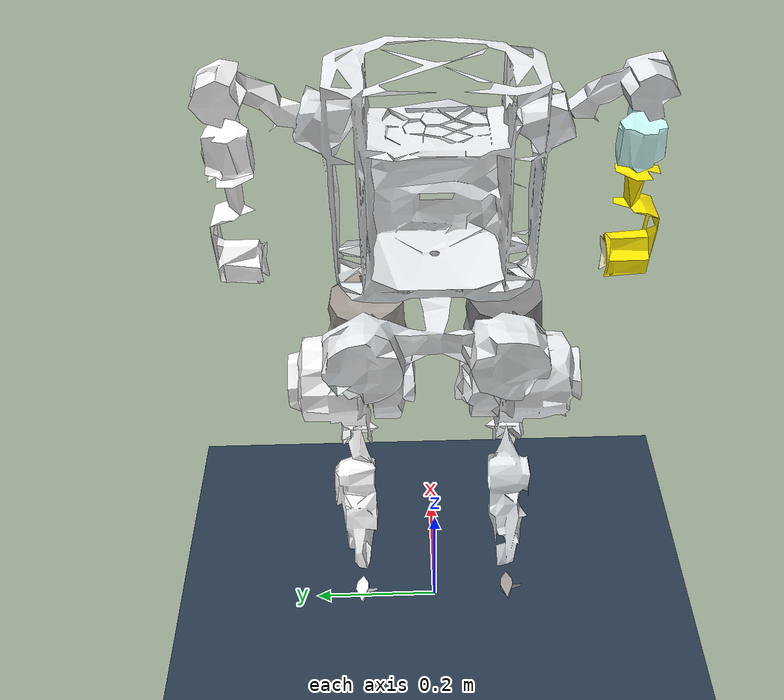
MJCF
<mujoco model="Dora2_yin">
  <compiler angle="radian" meshdir="meshes" />
  <option timestep='0.001' iterations='50' solver='PGS' gravity='0 0 -9.81'>
      <flag frictionloss="enable"/>
  </option>

  <size njmax="500" nconmax="100" />

  <visual>
      <quality shadowsize='4096'/>
      <map znear='0.05'/>
  </visual>

  <default>
      <joint limited='true'/>
      <motor ctrllimited='true'/>
      <geom  condim='4' contype="1" conaffinity="15" solref='0.001 2' friction='0.9 0.2 0.2'/>
      <equality solref='0.001 2'/>
      <default class='visualgeom'>
          <geom material='visualgeom' condim='1' contype='0' conaffinity='0'/>
      </default>

      <default class='leg_joint_param'>
          <joint  damping="0.01" frictionloss="0.01" armature="0.01"/>
      </default>

      <default class='obstacle'>
          <geom condim='3' contype='1' conaffinity='15' rgba="0.8 0.8 0.8 1"/>
      </default>

  </default>

  <asset>
    <texture type="skybox" builtin="gradient" rgb1="0.3 0.5 0.7" rgb2="0 0 0" width="512" height="512"/>
    <texture name="texplane" type="2d" builtin="checker" rgb1=".2 .3 .4" rgb2=".1 0.15 0.2"
        width="512" height="512" mark="cross" markrgb=".8 .8 .8"/>
    <texture name="texplane2" type="2d" builtin="checker" rgb1="1 0.3137 0.1843" rgb2="0.0 0.30196 0.38039"
        width="512" height="512" mark="cross" markrgb=".8 .8 .8"/>

    <material name="matplane" reflectance="0." texture="texplane" texrepeat="1 1" texuniform="true"/>
    <material name="matplane2" reflectance="0.1" texture="texplane2" texrepeat="1 1" texuniform="true"/>

    <material name='visualgeom'  rgba='0.5 0.9 0.2 1'/>
    <mesh name="base_link" file="base_link.STL"/>
    <mesh name="l_arm_shoulder_pitch_Link" file="l_arm_shoulder_pitch_Link.STL"/>
    <mesh name="l_arm_shoulder_roll_Link" file="l_arm_shoulder_roll_Link.STL"/>
    <mesh name="l_arm_shoulder_yaw_Link" file="l_arm_shoulder_yaw_Link.STL"/>
    <mesh name="l_arm_elbow_Link" file="l_arm_elbow_Link.STL"/>
    <mesh name="r_arm_shoulder_pitch_Link" file="r_arm_shoulder_pitch_Link.STL"/>
    <mesh name="r_arm_shoulder_roll_Link" file="r_arm_shoulder_roll_Link.STL"/>
    <mesh name="r_arm_shoulder_yaw_Link" file="r_arm_shoulder_yaw_Link.STL"/>
    <mesh name="r_arm_elbow_Link" file="r_arm_elbow_Link.STL"/>
    <mesh name="l_leg_hip_roll_Link" file="l_leg_hip_roll_Link.STL"/>
    <mesh name="l_leg_hip_yaw_Link" file="l_leg_hip_yaw_Link.STL"/>
    <mesh name="l_leg_hip_pitch_Link" file="l_leg_hip_pitch_Link.STL"/>
    <mesh name="l_leg_knee_Link" file="l_leg_knee_Link.STL"/>
    <mesh name="l_leg_ankle_pitch_Link" file="l_leg_ankle_pitch_Link.STL"/>
    <mesh name="l_leg_ankle_roll_Link" file="l_leg_ankle_roll_Link.STL"/>
    <mesh name="r_leg_hip_roll_Link" file="r_leg_hip_roll_Link.STL"/>
    <mesh name="r_leg_hip_yaw_Link" file="r_leg_hip_yaw_Link.STL"/>
    <mesh name="r_leg_hip_pitch_Link" file="r_leg_hip_pitch_Link.STL"/>
    <mesh name="r_leg_knee_Link" file="r_leg_knee_Link.STL"/>
    <mesh name="r_leg_ankle_pitch_Link" file="r_leg_ankle_pitch_Link.STL"/>
    <mesh name="r_leg_ankle_roll_Link" file="r_leg_ankle_roll_Link.STL"/>

    <hfield name='hf0' nrow='200' ncol='200' size="10 5 0.2 .1"/>
  </asset>
  <worldbody>
  <light directional="true" diffuse=".4 .4 .4" specular="0.1 0.1 0.1" pos="0 0 5.0" dir="0 0 -1" castshadow="false"/>
    <light directional="true" diffuse=".6 .6 .6" specular="0.2 0.2 0.2" pos="0 0 4" dir="0 0 -1"/>
    <geom name="ground" type="plane" size="0 0 1" pos="0.001 0 0" quat="1 0 0 0" material="matplane" condim="3" conaffinity='15'/>

    <body name="base_link" pos="0 0 0.7">
      <inertial pos="-0.026899 -1.898e-06 0.035918" quat="0.99999 0.00379473 0.00224104 -9.36135e-05" mass="5.7651" diaginertia="0.0200531 0.0145821 0.0131238"/>
      <geom type="mesh" contype="0" conaffinity="0" group="1" density="0" rgba="0.89804 0.91765 0.92941 1" mesh="base_link"/>
      <geom type="mesh" rgba="0.89804 0.91765 0.92941 1" mesh="base_link" class="visualgeom"/>
      <freejoint name="root" />
      <site name='imu' size='0.01' pos='0.0 0 0.0'/>

      <body name="l_arm_shoulder_pitch_Link" pos="0 0.16535 0.20168" quat="0.819161 -0.573564 0 0">
        <inertial pos="-0.0032277 -0.00090287 0.064029" quat="0.995945 -0.0426167 0.0788282 -0.00794725" mass="0.47485" diaginertia="0.000267127 0.000232009 0.000178094"/>
        <geom type="mesh" contype="0" conaffinity="0" group="1" density="0" rgba="1 1 1 1" mesh="l_arm_shoulder_pitch_Link"/>
        <geom type="mesh" rgba="1 1 1 1" mesh="l_arm_shoulder_pitch_Link" class="visualgeom"/>
        <body name="l_arm_shoulder_roll_Link" pos="0 0 0.07625" quat="0.819161 0.573564 0 0">
          <inertial pos="0.00482434 -0.000218754 -0.0666849" quat="0.971199 -0.0307217 0.236148 0.00792513" mass="0.369997" diaginertia="0.000211172 0.000200364 0.000146377"/>
          <geom type="mesh" contype="0" conaffinity="0" group="1" density="0" rgba="1 1 1 1" mesh="l_arm_shoulder_roll_Link"/>
          <geom type="mesh" rgba="1 1 1 1" mesh="l_arm_shoulder_roll_Link" class="visualgeom"/>
          <body name="l_arm_shoulder_yaw_Link" pos="0 0 -0.108">
            <inertial pos="-4.03283e-05 0.0024581 -0.0964013" quat="0.704697 0.0547693 -0.0224546 0.707035" mass="0.385684" diaginertia="0.000170986 0.0001408 0.000126399"/>
            <geom type="mesh" contype="0" conaffinity="0" group="1" density="0" rgba="1 1 1 1" mesh="l_arm_shoulder_yaw_Link"/>
            <geom type="mesh" rgba="1 1 1 1" mesh="l_arm_shoulder_yaw_Link" class="visualgeom"/>
            <body name="l_arm_elbow_Link" pos="0 -0.017 -0.11875">
              <inertial pos="0.000783883 -0.00711646 -0.000187671" quat="0.437811 0.555063 0.555267 0.43807" mass="0.0234686" diaginertia="9.07837e-06 5.10608e-06 4.66978e-06"/>
              <geom type="mesh" contype="0" conaffinity="0" group="1" density="0" rgba="1 1 1 1" mesh="l_arm_elbow_Link"/>
              <geom type="mesh" rgba="1 1 1 1" mesh="l_arm_elbow_Link" class="visualgeom"/>
            </body>
          </body>
        </body>
      </body>
      <body name="r_arm_shoulder_pitch_Link" pos="0 -0.16535 0.20168" quat="0.819161 0.573564 0 0">
        <inertial pos="-0.00322766 0.000902867 0.0640292" quat="0.995945 0.0426211 0.0788317 0.00794663" mass="0.474849" diaginertia="0.000267126 0.000232009 0.000178099"/>
        <geom type="mesh" contype="0" conaffinity="0" group="1" density="0" rgba="0.898039 0.917647 0.929412 1" mesh="r_arm_shoulder_pitch_Link"/>
        <geom type="mesh" rgba="0.898039 0.917647 0.929412 1" mesh="r_arm_shoulder_pitch_Link" class="visualgeom"/>
        <body name="r_arm_shoulder_roll_Link" pos="0 0 0.07625" quat="0.819161 -0.573564 0 0">
          <inertial pos="0.00482435 0.000218646 -0.0666849" quat="0.971199 0.0307083 0.236148 -0.00795235" mass="0.369997" diaginertia="0.000211172 0.000200364 0.000146377"/>
          <geom type="mesh" contype="0" conaffinity="0" group="1" density="0" rgba="0.780392 0.972549 0.956863 1" mesh="r_arm_shoulder_roll_Link"/>
          <geom type="mesh" rgba="0.780392 0.972549 0.956863 1" mesh="r_arm_shoulder_roll_Link" class="visualgeom"/>
          <body name="r_arm_shoulder_yaw_Link" pos="0 0 -0.108">
            <inertial pos="-4.033e-05 -0.0024581 -0.096401" quat="0.707035 -0.0224505 0.0547673 0.704697" mass="0.38568" diaginertia="0.00017099 0.0001408 0.0001264"/>
            <geom type="mesh" contype="0" conaffinity="0" group="1" density="0" rgba="1 0.90588 0 1" mesh="r_arm_shoulder_yaw_Link"/>
            <geom type="mesh" rgba="1 0.90588 0 1" mesh="r_arm_shoulder_yaw_Link" class="visualgeom"/>
            <body name="r_arm_elbow_Link" pos="0 0.017 -0.11875">
              <inertial pos="0.000783883 0.00711646 -0.000187671" quat="0.43807 0.555267 0.555063 0.437811" mass="0.0234686" diaginertia="9.07837e-06 5.10608e-06 4.66978e-06"/>
              <geom type="mesh" contype="0" conaffinity="0" group="1" density="0" rgba="0.972549 0.945098 0.780392 1" mesh="r_arm_elbow_Link"/>
              <geom type="mesh" rgba="0.972549 0.945098 0.780392 1" mesh="r_arm_elbow_Link" class="visualgeom"/>
            </body>
          </body>
        </body>
      </body>
      <body name="l_leg_hip_roll_Link" pos="-0.0792 0.09002 -0.085">
        <inertial pos="0.073997 -2.6118e-05 -0.00038831" quat="0.00777235 0.708763 -0.00795807 0.705359" mass="1.2237" diaginertia="0.00211032 0.00120146 0.00108742"/>
        <joint name="l_leg_hip_roll_joint" pos="0 0 0" axis="1 0 0" limited="true" range="-0.3 1" class="leg_joint_param"/>
        <geom type="mesh" contype="0" conaffinity="0" group="1" density="0" rgba="0.64706 0.61961 0.58824 1" mesh="l_leg_hip_roll_Link"/>
        <geom type="mesh" rgba="0.64706 0.61961 0.58824 1" mesh="l_leg_hip_roll_Link" class="visualgeom"/>
        <body name="l_leg_hip_yaw_Link" pos="0.0815 0 -0.0375">
          <inertial pos="0.00018298 -0.018275 -0.069994" quat="0.707428 0.00572459 0.00438224 0.706749" mass="1.5439" diaginertia="0.00287641 0.00161813 0.00145186"/>
          <joint name="l_leg_hip_yaw_joint" pos="0 0 0" axis="0 0 1" limited="true" range="-0.75 1.05" class="leg_joint_param"/>
          <geom type="mesh" contype="0" conaffinity="0" group="1" density="0" rgba="0.89804 0.91765 0.92941 1" mesh="l_leg_hip_yaw_Link"/>
          <geom type="mesh" rgba="0.89804 0.91765 0.92941 1" mesh="l_leg_hip_yaw_Link" class="visualgeom"/>
          <body name="l_leg_hip_pitch_Link" pos="0 0 -0.076" quat="0.96639 0 -0.257081 0">
            <inertial pos="0.0026305 0.0505925 -0.0509281" quat="0.70606 0.00104966 -0.00926912 0.708091" mass="2.6378" diaginertia="0.0146686 0.0128065 0.00217733"/>
            <joint name="l_leg_hip_pitch_joint" pos="0 0 0" axis="0 1 0" limited="true" range="-0.98 2.02" class="leg_joint_param"/>
            <geom type="mesh" contype="0" conaffinity="0" group="1" density="0" rgba="1 1 1 1" mesh="l_leg_hip_pitch_Link"/>
            <geom type="mesh" rgba="1 1 1 1" mesh="l_leg_hip_pitch_Link" class="visualgeom"/>
            <body name="l_leg_knee_Link" pos="0 0.032659 -0.27" quat="0.865324 0 0.501213 0">
              <inertial pos="0.0026677 0.00221957 -0.128036" quat="0.990892 -0.0134864 0.00444145 -0.133909" mass="1.34568" diaginertia="0.00225135 0.00224431 0.00046233"/>
              <joint name="l_leg_knee_joint" pos="0 0 0" axis="0 1 0" limited="true" range="-0.96 0.96" class="leg_joint_param"/>
              <geom type="mesh" contype="0" conaffinity="0" group="1" density="0" rgba="1 1 1 1" mesh="l_leg_knee_Link"/>
              <geom type="mesh" rgba="1 1 1 1" mesh="l_leg_knee_Link" class="visualgeom"/>
              <body name="l_leg_ankle_pitch_Link" pos="0 0 -0.28" quat="0.96639 0 -0.257081 0">
                <inertial pos="0.00104161 3.86597e-09 -9.72772e-10" quat="9.10008e-07 0.707107 -9.10008e-07 0.707107" mass="0.0899541" diaginertia="2.19295e-05 1.42974e-05 1.16237e-05"/>
                <joint name="l_leg_ankle_pitch_joint" pos="0 0 0" axis="0 1 0" limited="true" range="-0.28 1.08" class="leg_joint_param"/>
                <geom type="mesh" contype="0" conaffinity="0" group="1" density="0" rgba="1 1 1 1" mesh="l_leg_ankle_pitch_Link"/>
                <geom type="mesh" rgba="1 1 1 1" mesh="l_leg_ankle_pitch_Link" class="visualgeom"/>
                <body name="l_leg_ankle_roll_Link">
                  <inertial pos="0.00956352 2.52051e-05 -0.0277821" quat="4.0865e-05 0.717327 0.000173041 0.696736" mass="0.442108" diaginertia="0.000870926 0.00072413 0.000178854"/>
                  <joint name="l_leg_ankle_roll_joint" pos="0 0 0" axis="1 0 0" limited="true" range="-0.5 0.5" class="leg_joint_param"/>
                  <geom type="mesh" contype="0" conaffinity="0" group="1" density="0" rgba="1 1 1 1" mesh="l_leg_ankle_roll_Link"/>
                  <geom type="mesh" rgba="1 1 1 1" mesh="l_leg_ankle_roll_Link"/>
                </body>
              </body>
            </body>
          </body>
        </body>
      </body>
      <body name="r_leg_hip_roll_Link" pos="-0.0792 -0.08998 -0.085">
        <inertial pos="0.073997 -2.6118e-05 -0.00038831" quat="0.00777235 0.708763 -0.00795807 0.705359" mass="1.2237" diaginertia="0.00211032 0.00120146 0.00108742"/>
        <joint name="r_leg_hip_roll_joint" pos="0 0 0" axis="1 0 0" limited="true" range="-1 0.3" class="leg_joint_param"/>
        <geom type="mesh" contype="0" conaffinity="0" group="1" density="0" rgba="0.49804 0.49804 0.49804 1" mesh="r_leg_hip_roll_Link"/>
        <geom type="mesh" rgba="0.49804 0.49804 0.49804 1" mesh="r_leg_hip_roll_Link" class="visualgeom"/>
        <body name="r_leg_hip_yaw_Link" pos="0.0815 0 -0.0375">
          <inertial pos="0.00023924 0.018241 -0.069997" quat="0.707111 0.000239355 0.00158341 0.707101" mass="1.5439" diaginertia="0.00287661 0.0016183 0.00145149"/>
          <joint name="r_leg_hip_yaw_joint" pos="0 0 0" axis="0 0 1" limited="true" range="-1.05 0.75" class="leg_joint_param"/>
          <geom type="mesh" contype="0" conaffinity="0" group="1" density="0" rgba="0.89804 0.91765 0.92941 1" mesh="r_leg_hip_yaw_Link"/>
          <geom type="mesh" rgba="0.89804 0.91765 0.92941 1" mesh="r_leg_hip_yaw_Link" class="visualgeom"/>
          <body name="r_leg_hip_pitch_Link" pos="0 0 -0.076" quat="0.96639 0 -0.257081 0">
            <inertial pos="0.0026305 -0.0505925 -0.0509281" quat="0.70606 0.00104966 -0.00926912 0.708091" mass="2.6378" diaginertia="0.0146686 0.0128065 0.00217733"/>
            <joint name="r_leg_hip_pitch_joint" pos="0 0 0" axis="0 1 0" limited="true" range="-0.98 2.02" class="leg_joint_param"/>
            <geom type="mesh" contype="0" conaffinity="0" group="1" density="0" rgba="0.89804 0.91765 0.92941 1" mesh="r_leg_hip_pitch_Link"/>
            <geom type="mesh" rgba="0.89804 0.91765 0.92941 1" mesh="r_leg_hip_pitch_Link" class="visualgeom"/>
            <body name="r_leg_knee_Link" pos="0 -0.0327 -0.27" quat="0.865324 0 0.501213 0">
              <inertial pos="0.0026677 -0.0022197 -0.12804" quat="0.99105 0.0134819 0.00445742 0.132731" mass="1.3457" diaginertia="0.00225137 0.00224427 0.000462333"/>
              <joint name="r_leg_knee_joint" pos="0 0 0" axis="0 1 0" limited="true" range="-0.96 0.96" class="leg_joint_param"/>
              <geom type="mesh" contype="0" conaffinity="0" group="1" density="0" rgba="0.89804 0.91765 0.92941 1" mesh="r_leg_knee_Link"/>
              <geom type="mesh" rgba="0.89804 0.91765 0.92941 1" mesh="r_leg_knee_Link" class="visualgeom"/>
              <body name="r_leg_ankle_pitch_Link" pos="0 0 -0.28" quat="0.96639 0 -0.257081 0">
                <inertial pos="0.0010416 -3.8669e-09 -9.735e-10" quat="-9.10252e-07 0.707107 9.10252e-07 0.707107" mass="0.089954" diaginertia="2.1929e-05 1.4297e-05 1.1624e-05"/>
                <joint name="r_leg_ankle_pitch_joint" pos="0 0 0" axis="0 1 0" limited="true" range="-0.28 1.08" class="leg_joint_param"/>
                <geom type="mesh" contype="0" conaffinity="0" group="1" density="0" rgba="0.64706 0.61961 0.58824 1" mesh="r_leg_ankle_pitch_Link"/>
                <geom type="mesh" rgba="0.64706 0.61961 0.58824 1" mesh="r_leg_ankle_pitch_Link" class="visualgeom"/>
                <body name="r_leg_ankle_roll_Link">
                  <inertial pos="0.0095635 -2.5209e-05 -0.027782" quat="-4.10163e-05 0.717328 -0.000173027 0.696736" mass="0.44211" diaginertia="0.000870927 0.00072413 0.000178853"/>
                  <joint name="r_leg_ankle_roll_joint" pos="0 0 0" axis="1 0 0" limited="true" range="-0.5 0.5" class="leg_joint_param"/>
                  <geom type="mesh" contype="0" conaffinity="0" group="1" density="0" rgba="0.89804 0.91765 0.92941 1" mesh="r_leg_ankle_roll_Link"/>
                  <geom type="mesh" rgba="0.89804 0.91765 0.92941 1" mesh="r_leg_ankle_roll_Link"/>
                </body>
              </body>
            </body>
          </body>
        </body>
      </body>
    </body>

  </worldbody>

  <actuator>
      <motor name="l_leg_hip_roll_joint"   joint="l_leg_hip_roll_joint"   gear="1" ctrllimited="true" ctrlrange="-200 200"/>
      <motor name="l_leg_hip_yaw_joint"  joint="l_leg_hip_yaw_joint"  gear="1" ctrllimited="true" ctrlrange="-200 200"/>
      <motor name="l_leg_hip_pitch_joint" joint="l_leg_hip_pitch_joint" gear="1" ctrllimited="true" ctrlrange="-200 200"/>
      <motor name="l_leg_knee_joint"      joint="l_leg_knee_joint"      gear="1" ctrllimited="true" ctrlrange="-200 200"/>
      <motor name="l_leg_ankle_pitch_joint"     joint="l_leg_ankle_pitch_joint"     gear="1" ctrllimited="true" ctrlrange="-200 200"/>
      <motor name="l_leg_ankle_roll_joint"     joint="l_leg_ankle_roll_joint"     gear="1" ctrllimited="true" ctrlrange="-200 200"/>
      <motor name="r_leg_hip_roll_joint"   joint="r_leg_hip_roll_joint"   gear="1" ctrllimited="true" ctrlrange="-200 200"/>
      <motor name="r_leg_hip_yaw_joint"  joint="r_leg_hip_yaw_joint"  gear="1" ctrllimited="true" ctrlrange="-200 200"/>
      <motor name="r_leg_hip_pitch_joint" joint="r_leg_hip_pitch_joint" gear="1" ctrllimited="true" ctrlrange="-200 200"/>
      <motor name="r_leg_knee_joint"      joint="r_leg_knee_joint"      gear="1" ctrllimited="true" ctrlrange="-200 200"/>
      <motor name="r_leg_ankle_pitch_joint"     joint="r_leg_ankle_pitch_joint"     gear="1" ctrllimited="true" ctrlrange="-200 200"/>
      <motor name="r_leg_ankle_roll_joint"     joint="r_leg_ankle_roll_joint"     gear="1" ctrllimited="true" ctrlrange="-200 200"/>
  </actuator>

  <sensor>
      <actuatorpos name='l_leg_hip_roll_joint_pos'    actuator='l_leg_hip_roll_joint'   user='13'/>
      <actuatorpos name='l_leg_hip_yaw_joint_pos'   actuator='l_leg_hip_yaw_joint'  user='13'/>
      <actuatorpos name='l_leg_hip_pitch_joint_pos'  actuator='l_leg_hip_pitch_joint' user='13'/>
      <actuatorpos name='l_leg_knee_joint_pos'       actuator='l_leg_knee_joint'      user='13'/>
      <actuatorpos name='l_leg_ankle_pitch_joint_pos'      actuator='l_leg_ankle_pitch_joint'     user='13'/>
      <actuatorpos name='l_leg_ankle_roll_joint_pos'    actuator='l_leg_ankle_roll_joint'   user='13'/>
      <actuatorpos name='r_leg_hip_roll_joint_pos'   actuator='r_leg_hip_roll_joint'  user='13'/>
      <actuatorpos name='r_leg_hip_yaw_joint_pos'  actuator='r_leg_hip_yaw_joint' user='13'/>
      <actuatorpos name='r_leg_hip_pitch_joint_pos'       actuator='r_leg_hip_pitch_joint'      user='13'/>
      <actuatorpos name='r_leg_knee_joint_pos'      actuator='r_leg_knee_joint'     user='13'/>
      <actuatorpos name='r_leg_ankle_pitch_joint_pos'      actuator='r_leg_ankle_pitch_joint'     user='13'/>
      <actuatorpos name='r_leg_ankle_roll_joint_pos'      actuator='r_leg_ankle_roll_joint'     user='13'/>

      <actuatorvel name='l_leg_hip_roll_joint_vel'    actuator='l_leg_hip_roll_joint'   user='13'/>
      <actuatorvel name='l_leg_hip_yaw_joint_vel'   actuator='l_leg_hip_yaw_joint'  user='13'/>
      <actuatorvel name='l_leg_hip_pitch_joint_vel'  actuator='l_leg_hip_pitch_joint' user='13'/>
      <actuatorvel name='l_leg_knee_joint_vel'       actuator='l_leg_knee_joint'      user='13'/>
      <actuatorvel name='l_leg_ankle_pitch_joint_vel'      actuator='l_leg_ankle_pitch_joint'     user='13'/>
      <actuatorvel name='l_leg_ankle_roll_joint_vel'    actuator='l_leg_ankle_roll_joint'   user='13'/>
      <actuatorvel name='r_leg_hip_roll_joint_vel'   actuator='r_leg_hip_roll_joint'  user='13'/>
      <actuatorvel name='r_leg_hip_yaw_joint_vel'  actuator='r_leg_hip_yaw_joint' user='13'/>
      <actuatorvel name='r_leg_hip_pitch_joint_vel'       actuator='r_leg_hip_pitch_joint'      user='13'/>
      <actuatorvel name='r_leg_knee_joint_vel'      actuator='r_leg_knee_joint'     user='13'/>
      <actuatorvel name='r_leg_ankle_pitch_joint_vel'      actuator='r_leg_ankle_pitch_joint'     user='13'/>
      <actuatorvel name='r_leg_ankle_roll_joint_vel'      actuator='r_leg_ankle_roll_joint'     user='13'/>

      <actuatorfrc name='l_leg_hip_roll_joint_frc'    actuator='l_leg_hip_roll_joint'   user='13' noise='1e-3'/>
      <actuatorfrc name='l_leg_hip_yaw_joint_frc'   actuator='l_leg_hip_yaw_joint'  user='13' noise='1e-3'/>
      <actuatorfrc name='l_leg_hip_pitch_joint_frc'  actuator='l_leg_hip_pitch_joint' user='13' noise='1e-3'/>
      <actuatorfrc name='l_leg_knee_joint_frc'       actuator='l_leg_knee_joint'      user='13' noise='1e-3'/>
      <actuatorfrc name='l_leg_ankle_pitch_joint_frc'      actuator='l_leg_ankle_pitch_joint'     user='13' noise='1e-3'/>
      <actuatorfrc name='l_leg_ankle_roll_joint_frc'    actuator='l_leg_ankle_roll_joint'   user='13' noise='1e-3'/>
      <actuatorfrc name='r_leg_hip_roll_joint_frc'   actuator='r_leg_hip_roll_joint'  user='13' noise='1e-3'/>
      <actuatorfrc name='r_leg_hip_yaw_joint_frc'  actuator='r_leg_hip_yaw_joint' user='13' noise='1e-3'/>
      <actuatorfrc name='r_leg_hip_pitch_joint_frc'       actuator='r_leg_hip_pitch_joint'      user='13' noise='1e-3'/>
      <actuatorfrc name='r_leg_knee_joint_frc'      actuator='r_leg_knee_joint'     user='13' noise='1e-3'/>
      <actuatorfrc name='r_leg_ankle_pitch_joint_frc'      actuator='r_leg_ankle_pitch_joint'     user='13' noise='1e-3'/>
      <actuatorfrc name='r_leg_ankle_roll_joint_frc'      actuator='r_leg_ankle_roll_joint'     user='13' noise='1e-3'/>

      <framequat     name='orientation' objtype='site' noise='0.001' objname='imu'/>
      <framepos      name='position' objtype='site' noise='0.001' objname='imu'/>
      <gyro          name='angular-velocity'    site='imu' noise='0.005' cutoff='34.9'/>
      <velocimeter   name='linear-velocity'     site='imu' noise='0.001' cutoff='30'/>
      <accelerometer name='linear-acceleration' site='imu' noise='0.005' cutoff='157'/>
      <magnetometer  name='magnetometer'        site='imu'/>

  </sensor>

</mujoco>
